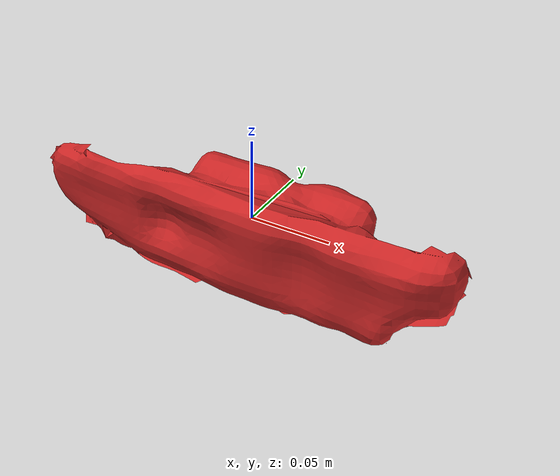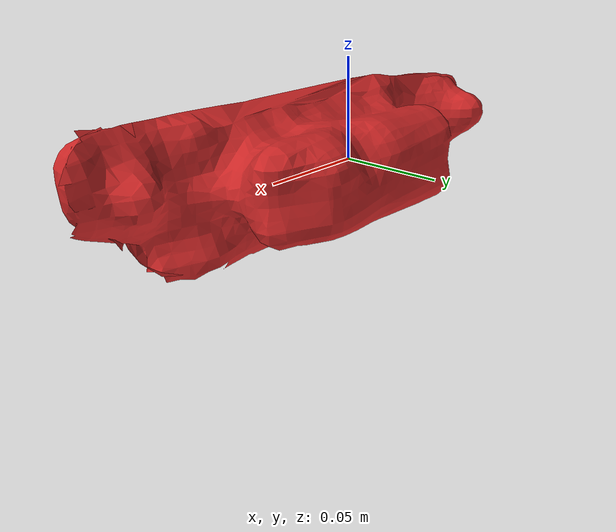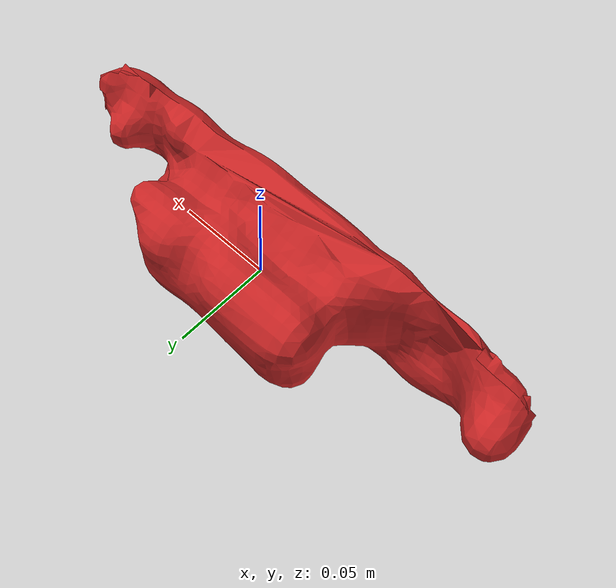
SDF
<sdf version='1.4'>
  <model name='switch_model'>
    <link name='switch'>
      <pose>0 0 0 0 0 0</pose>
      <inertial>
        <pose>0 0.04 0 0 -0 0</pose>
        <mass>9.07</mass>
        <inertia>
          <ixx>1</ixx>
          <ixy>0</ixy>
          <ixz>0</ixz>
          <iyy>1</iyy>
          <iyz>0</iyz>
          <izz>1</izz>
        </inertia>
      </inertial>
      <collision name='switch_collision'>
        <pose>0 0 0 0 0 0</pose>
        <geometry>
          <mesh>
            <scale>1 1 1</scale>
            <uri>model://switch/meshes/switch.dae</uri>
          </mesh>
        </geometry>
        <surface>
          <contact>
            <ode/>
          </contact>
          <friction>
            <ode/>
          </friction>
        </surface>
      </collision>
      <visual name='switch_visual'>
        <pose>0 0 0 0 0 0 </pose>
        <geometry>
          <mesh>
            <scale>1 1 1</scale>
            <uri>model://switch/meshes/switch.dae</uri>
          </mesh>
        </geometry>
        <material>
          <script>
            <name>Gazebo/Red</name>
            <uri>__default__</uri>
          </script>
        </material>
      </visual>
      <gravity>1</gravity>
      <velocity_decay>
        <linear>0</linear>
        <angular>0</angular>
      </velocity_decay>
      <self_collide>0</self_collide>
    </link>
  </model>
</sdf>
